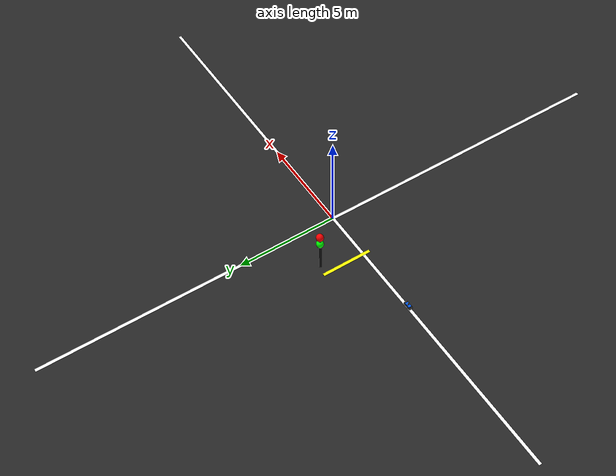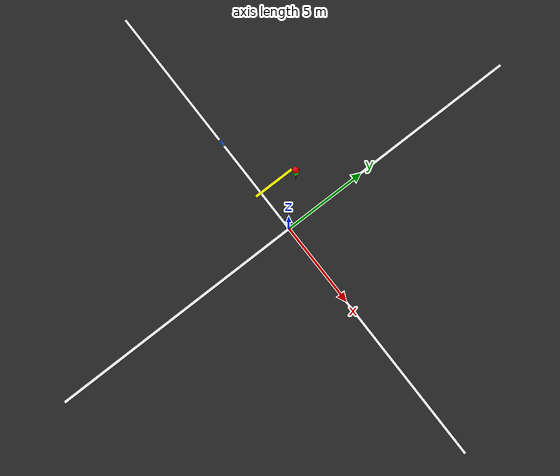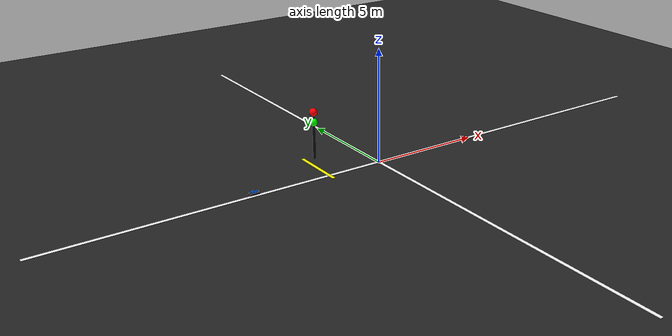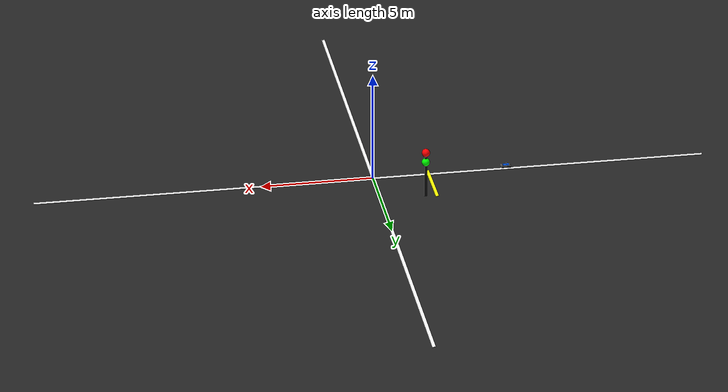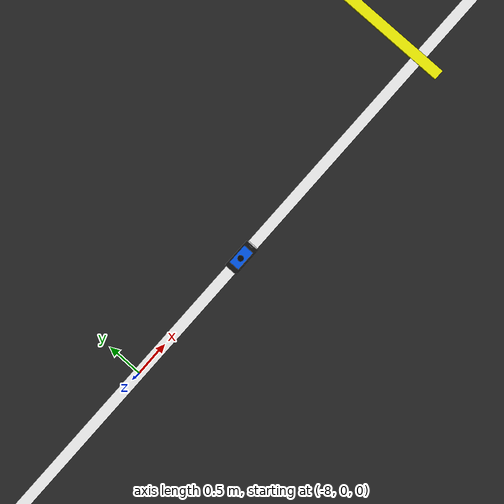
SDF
<?xml version="1.0" ?>
<sdf version="1.9">
  <world name="traffic_light_grid_world">
    <physics name="1ms" type="ignored"><max_step_size>0.001</max_step_size><real_time_factor>1.0</real_time_factor></physics>
    <plugin filename="gz-sim-physics-system" name="gz::sim::systems::Physics"/>
    <plugin filename="gz-sim-user-commands-system" name="gz::sim::systems::UserCommands"/>
    <plugin filename="gz-sim-scene-broadcaster-system" name="gz::sim::systems::SceneBroadcaster"/>
    <plugin filename="gz-sim-sensors-system" name="gz::sim::systems::Sensors">
      <render_engine>ogre2</render_engine>
    </plugin>
    <light type="directional" name="sun"><pose>0 0 10 0 0 0</pose><diffuse>0.8 0.8 0.8 1</diffuse><direction>-0.5 0.1 -0.9</direction></light>
    <model name="ground"><static>true</static><link name="ground_link"><collision name="collision"><geometry><plane><normal>0 0 1</normal><size>40 40</size></plane></geometry></collision><visual name="visual"><geometry><plane><normal>0 0 1</normal><size>40 40</size></plane></geometry><material><diffuse>0.15 0.15 0.15 1</diffuse></material></visual></link></model>
    <model name="intersection_markings"><static>true</static><link name="link">
      <visual name="east_west"><pose>0 0 0.012 0 0 0</pose><geometry><box><size>30 0.15 0.02</size></box></geometry><material><diffuse>1 1 1 1</diffuse></material></visual>
      <visual name="north_south"><pose>0 0 0.012 0 0 0</pose><geometry><box><size>0.15 30 0.02</size></box></geometry><material><diffuse>1 1 1 1</diffuse></material></visual>
      <visual name="stop_line"><pose>-2.5 0.9 0.015 0 0 0</pose><geometry><box><size>0.15 2.5 0.025</size></box></geometry><material><diffuse>1 1 0 1</diffuse></material></visual>
    </link></model>
    <model name="traffic_lights"><static>true</static><link name="link">
      <visual name="pole1"><pose>-2 2 1 0 0 0</pose><geometry><cylinder><radius>0.06</radius><length>2</length></cylinder></geometry><material><diffuse>0.05 0.05 0.05 1</diffuse></material></visual>
      <visual name="red1"><pose>-2 2 2.1 0 0 0</pose><geometry><sphere><radius>0.18</radius></sphere></geometry><material><diffuse>1 0 0 1</diffuse></material></visual>
      <visual name="green1"><pose>-2 2 1.65 0 0 0</pose><geometry><sphere><radius>0.18</radius></sphere></geometry><material><diffuse>0 1 0 1</diffuse></material></visual>
    </link></model>

    <!-- QCar2 Plan-B robot included for Plan B demos. If you already spawned an official QCar, delete/ignore this include. -->
    <include>
      <uri>model://qcar2_planb</uri>
      <name>qcar2</name>
      <pose>-6 0 0.08 0 0 0</pose>
    </include>
  </world>
</sdf>

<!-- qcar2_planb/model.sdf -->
<sdf version="1.9">
  <model name="qcar2_planb">
    <pose>0 0 0.08 0 0 0</pose>

    <link name="base_link">
      <inertial>
        <mass>3.275</mass>
        <inertia>
          <ixx>0.01235</ixx><ixy>0</ixy><ixz>0</ixz>
          <iyy>0.0292</iyy><iyz>0</iyz><izz>0.03223</izz>
        </inertia>
      </inertial>

      <!-- Collision blocks copied from the uploaded URDF. -->
      <collision name="collision_center">
        <pose>0.000 0 0.053 0 0 0</pose>
        <geometry><box><size>0.155 0.15 0.08</size></box></geometry>
      </collision>
      <collision name="collision_front">
        <pose>0.194 0 0.083 0 0 0</pose>
        <geometry><box><size>0.03 0.15 0.115</size></box></geometry>
      </collision>
      <collision name="collision_back">
        <pose>-0.183 0 0.083 0 0 0</pose>
        <geometry><box><size>0.037 0.15 0.115</size></box></geometry>
      </collision>

      <visual name="body_main">
        <pose>0 0 0.06 0 0 0</pose>
        <geometry><box><size>0.42 0.19 0.09</size></box></geometry>
        <material><ambient>0.08 0.08 0.08 1</ambient><diffuse>0.08 0.08 0.08 1</diffuse></material>
      </visual>
      <visual name="top_cover">
        <pose>0.0 0 0.125 0 0 0</pose>
        <geometry><box><size>0.28 0.145 0.045</size></box></geometry>
        <material><ambient>0.0 0.35 0.95 1</ambient><diffuse>0.0 0.35 0.95 1</diffuse></material>
      </visual>
      <visual name="front_marker">
        <pose>0.215 0 0.105 0 0 0</pose>
        <geometry><box><size>0.015 0.13 0.035</size></box></geometry>
        <material><ambient>1 1 1 1</ambient><diffuse>1 1 1 1</diffuse></material>
      </visual>
    </link>

    <link name="wheel_frontLeft">
      <pose>0.12960 0.05590 0.03338 -1.5708 0 0</pose>
      <collision name="collision"><geometry><cylinder><radius>0.033</radius><length>0.025</length></cylinder></geometry></collision>
      <visual name="visual"><geometry><cylinder><radius>0.033</radius><length>0.025</length></cylinder></geometry><material><ambient>0.01 0.01 0.01 1</ambient><diffuse>0.01 0.01 0.01 1</diffuse></material></visual>
    </link>
    <link name="wheel_frontRight">
      <pose>0.12960 -0.05590 0.03338 -1.5708 0 0</pose>
      <collision name="collision"><geometry><cylinder><radius>0.033</radius><length>0.025</length></cylinder></geometry></collision>
      <visual name="visual"><geometry><cylinder><radius>0.033</radius><length>0.025</length></cylinder></geometry><material><ambient>0.01 0.01 0.01 1</ambient><diffuse>0.01 0.01 0.01 1</diffuse></material></visual>
    </link>
    <link name="wheel_rearLeft">
      <pose>-0.12765 0.05610 0.03338 -1.5708 0 0</pose>
      <collision name="collision"><geometry><cylinder><radius>0.033</radius><length>0.025</length></cylinder></geometry></collision>
      <visual name="visual"><geometry><cylinder><radius>0.033</radius><length>0.025</length></cylinder></geometry><material><ambient>0.01 0.01 0.01 1</ambient><diffuse>0.01 0.01 0.01 1</diffuse></material></visual>
    </link>
    <link name="wheel_rearRight">
      <pose>-0.12765 -0.05610 0.03338 -1.5708 0 0</pose>
      <collision name="collision"><geometry><cylinder><radius>0.033</radius><length>0.025</length></cylinder></geometry></collision>
      <visual name="visual"><geometry><cylinder><radius>0.033</radius><length>0.025</length></cylinder></geometry><material><ambient>0.01 0.01 0.01 1</ambient><diffuse>0.01 0.01 0.01 1</diffuse></material></visual>
    </link>

    <joint name="wheel_frontLeft_joint" type="revolute"><parent>base_link</parent><child>wheel_frontLeft</child><axis><xyz>0 0 1</xyz></axis></joint>
    <joint name="wheel_frontRight_joint" type="revolute"><parent>base_link</parent><child>wheel_frontRight</child><axis><xyz>0 0 1</xyz></axis></joint>
    <joint name="wheel_rearLeft_joint" type="revolute"><parent>base_link</parent><child>wheel_rearLeft</child><axis><xyz>0 0 1</xyz></axis></joint>
    <joint name="wheel_rearRight_joint" type="revolute"><parent>base_link</parent><child>wheel_rearRight</child><axis><xyz>0 0 1</xyz></axis></joint>

    <link name="lidar">
      <pose>-0.0139 0 0.194 0 0 0</pose>
      <visual name="lidar_visual"><geometry><cylinder><radius>0.04</radius><length>0.03</length></cylinder></geometry><material><ambient>0.02 0.02 0.02 1</ambient><diffuse>0.02 0.02 0.02 1</diffuse></material></visual>
      <sensor name="lidar" type="gpu_lidar">
        <topic>/qcar/scan</topic>
        <update_rate>15</update_rate>
        <ray>
          <scan><horizontal><samples>720</samples><resolution>1</resolution><min_angle>-3.14159</min_angle><max_angle>3.14159</max_angle></horizontal></scan>
          <range><min>0.08</min><max>12.0</max><resolution>0.01</resolution></range>
        </ray>
        <always_on>true</always_on>
        <visualize>true</visualize>
      </sensor>
    </link>
    <joint name="lidar_joint" type="fixed"><parent>base_link</parent><child>lidar</child></joint>

    <link name="csi_front">
      <pose>0.198 0 0.1095 0 0 0</pose>
      <visual name="camera_visual"><geometry><box><size>0.025 0.045 0.025</size></box></geometry><material><ambient>0.02 0.02 0.02 1</ambient><diffuse>0.02 0.02 0.02 1</diffuse></material></visual>
      <sensor name="front_camera" type="camera">
        <topic>/qcar/camera/image_raw</topic>
        <update_rate>15</update_rate>
        <camera>
          <horizontal_fov>1.047</horizontal_fov>
          <image><width>640</width><height>480</height><format>R8G8B8</format></image>
          <clip><near>0.05</near><far>50</far></clip>
        </camera>
        <always_on>true</always_on>
        <visualize>true</visualize>
      </sensor>
    </link>
    <joint name="csi_front_joint" type="fixed"><parent>base_link</parent><child>csi_front</child></joint>

    <plugin filename="gz-sim-diff-drive-system" name="gz::sim::systems::DiffDrive">
      <left_joint>wheel_frontLeft_joint</left_joint>
      <left_joint>wheel_rearLeft_joint</left_joint>
      <right_joint>wheel_frontRight_joint</right_joint>
      <right_joint>wheel_rearRight_joint</right_joint>
      <wheel_separation>0.112</wheel_separation>
      <wheel_radius>0.033</wheel_radius>
      <topic>/qcar/cmd_vel</topic>
      <odom_topic>/qcar/odom</odom_topic>
      <tf_topic>/tf</tf_topic>
      <frame_id>odom</frame_id>
      <child_frame_id>base_link</child_frame_id>
      <odom_publish_frequency>30</odom_publish_frequency>
    </plugin>
  </model>
</sdf>
